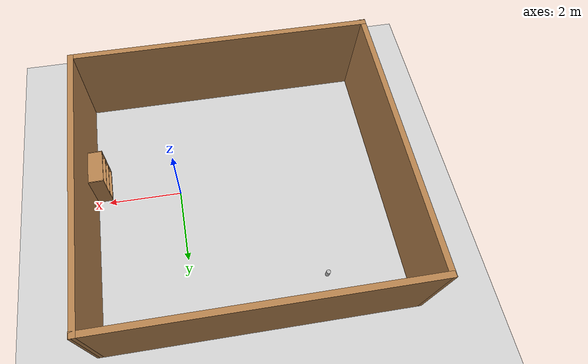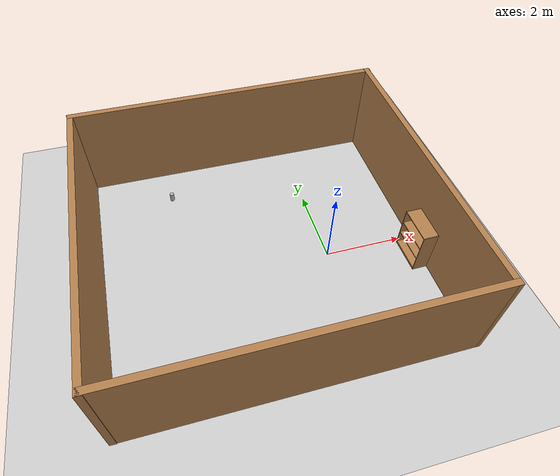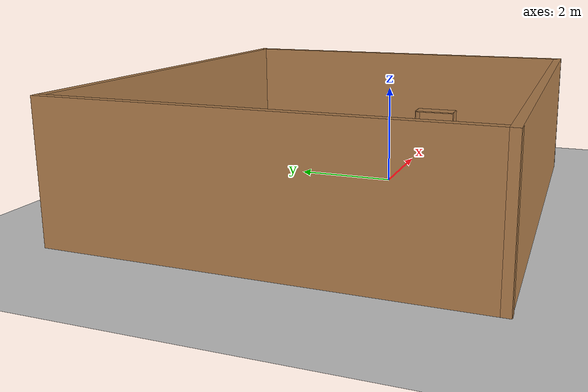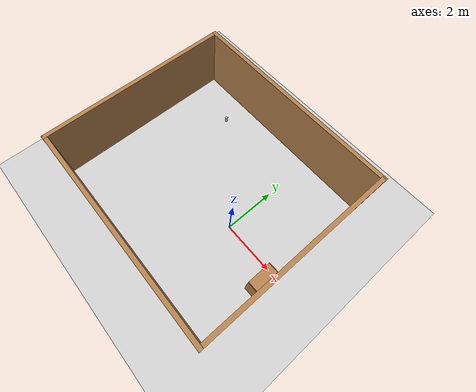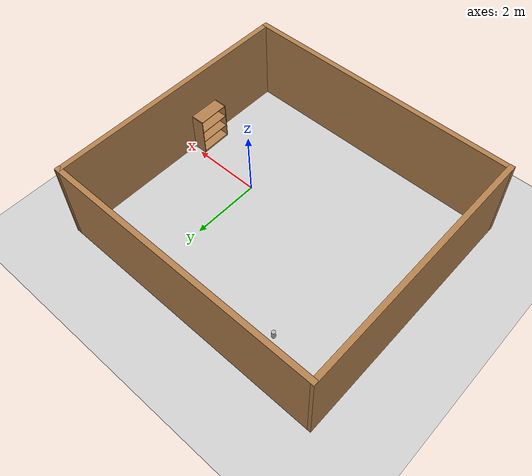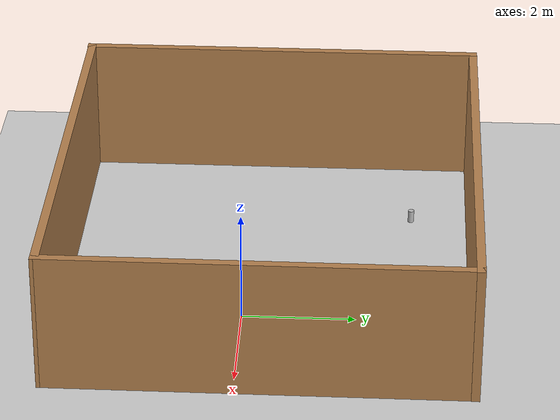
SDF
<sdf version="1.7">
 <world name="default">
  <model name="ground_plane">
   <static>1</static>
   <link name="link">
    <collision name="collision">
     <geometry><plane><normal>0 0 1</normal><size>100 100</size></plane></geometry>
     <surface>
      <contact><collide_bitmask>65535</collide_bitmask></contact>
      <friction><ode><mu>100</mu><mu2>50</mu2></ode></friction>
     </surface>
    </collision>
    <visual name="visual">
     <cast_shadows>0</cast_shadows>
     <geometry><plane><normal>0 0 1</normal><size>100 100</size></plane></geometry>
     <material>
      <script><uri>file://media/materials/scripts/gazebo.material</uri><name>Gazebo/Grey</name></script>
     </material>
    </visual>
   </link>
  </model>
  <light name="sun" type="directional">
   <pose>0 0 10 0 -0 0</pose>
   <diffuse>0.8 0.8 0.8 1</diffuse>
   <specular>0.2 0.2 0.2 1</specular>
   <attenuation>
    <range>1000</range>
    <constant>0.9</constant>
    <linear>0.01</linear>
    <quadratic>0.001</quadratic>
   </attenuation>
   <direction>-0.5 0.1 -0.9</direction>
   <spot><inner_angle>0</inner_angle><outer_angle>0</outer_angle><falloff>0</falloff></spot>
  </light>
  <scene><shadows>0</shadows><ambient>0.4 0.4 0.4 1</ambient><background>0.7 0.7 0.7 1</background></scene>
  <physics type="ode">
   <real_time_update_rate>1000</real_time_update_rate>
   <max_step_size>0.001</max_step_size>
   <real_time_factor>1</real_time_factor>
   <ode>
    <solver>
     <type>quick</type>
     <iters>150</iters>
     <precon_iters>0</precon_iters>
     <sor>1.4</sor>
     <use_dynamic_moi_rescaling>1</use_dynamic_moi_rescaling>
    </solver>
    <constraints>
     <cfm>1e-05</cfm>
     <erp>0.2</erp>
     <contact_max_correcting_vel>2000</contact_max_correcting_vel>
     <contact_surface_layer>0.01</contact_surface_layer>
    </constraints>
   </ode>
  </physics>
  <gravity>0 0 -9.8</gravity>
  <magnetic_field>6e-06 2.3e-05 -4.2e-05</magnetic_field>
  <atmosphere type="adiabatic"/>
  <audio><device>default</device></audio>
  <spherical_coordinates>
   <surface_model>EARTH_WGS84</surface_model>
   <latitude_deg>0</latitude_deg>
   <longitude_deg>0</longitude_deg>
   <elevation>0</elevation>
   <heading_deg>0</heading_deg>
  </spherical_coordinates>
  <model name="beer_1">
   <link name="link">
    <pose>0 0 0.115 0 -0 0</pose>
    <inertial>
     <mass>0.39</mass>
     <inertia><ixx>0.00058</ixx><ixy>0</ixy><ixz>0</ixz><iyy>0.00058</iyy><iyz>0</iyz><izz>0.00019</izz></inertia>
    </inertial>
    <collision name="collision">
     <geometry><cylinder><radius>0.055</radius><length>0.23</length></cylinder></geometry>
    </collision>
    <visual name="visual">
     <geometry><cylinder><radius>0.055</radius><length>0.23</length></cylinder></geometry>
     <material>
      <script>
       <uri>model://beer/materials/scripts</uri>
       <uri>model://beer/materials/textures</uri>
       <name>Beer/Diffuse</name>
      </script>
     </material>
    </visual>
   </link>
   <pose>-3.54997 2.96301 -0 0 -0 0</pose>
  </model>
  <model name="project_world.world">
   <pose>-1.6376 0.41964 0 0 -0 0</pose>
   <link name="Wall_1">
    <collision name="Wall_1_Collision">
     <geometry><box><size>8.17003 0.15 2.5</size></box></geometry>
     <pose>0 0 1.25 0 -0 0</pose>
    </collision>
    <visual name="Wall_1_Visual">
     <pose>0 0 1.25 0 -0 0</pose>
     <geometry><box><size>8.17003 0.15 2.5</size></box></geometry>
     <material>
      <script><uri>file://media/materials/scripts/gazebo.material</uri><name>Gazebo/Wood</name></script>
      <ambient>1 1 1 1</ambient>
     </material>
     <meta><layer>0</layer></meta>
    </visual>
    <pose>-0.019991 -3.63994 0 0 -0 -0.002494</pose>
   </link>
   <link name="Wall_2">
    <collision name="Wall_2_Collision">
     <geometry><box><size>7.43017 0.15 2.5</size></box></geometry>
     <pose>0 0 1.25 0 -0 0</pose>
    </collision>
    <visual name="Wall_2_Visual">
     <pose>0 0 1.25 0 -0 0</pose>
     <geometry><box><size>7.43017 0.15 2.5</size></box></geometry>
     <material>
      <script><uri>file://media/materials/scripts/gazebo.material</uri><name>Gazebo/Wood</name></script>
      <ambient>1 1 1 1</ambient>
     </material>
     <meta><layer>0</layer></meta>
    </visual>
    <pose>4.00501 -0.009942 0 0 -0 1.56668</pose>
   </link>
   <link name="Wall_3">
    <collision name="Wall_3_Collision">
     <geometry><box><size>8.18003 0.15 2.5</size></box></geometry>
     <pose>0 0 1.25 0 -0 0</pose>
    </collision>
    <visual name="Wall_3_Visual">
     <pose>0 0 1.25 0 -0 0</pose>
     <geometry><box><size>8.18003 0.15 2.5</size></box></geometry>
     <material>
      <script><uri>file://media/materials/scripts/gazebo.material</uri><name>Gazebo/Wood</name></script>
      <ambient>1 1 1 1</ambient>
     </material>
     <meta><layer>0</layer></meta>
    </visual>
    <pose>0.015009 3.64006 0 0 -0 3.1391</pose>
   </link>
   <link name="Wall_4">
    <collision name="Wall_4_Collision">
     <geometry><box><size>7.44011 0.15 2.5</size></box></geometry>
     <pose>0 0 1.25 0 -0 0</pose>
    </collision>
    <visual name="Wall_4_Visual">
     <pose>0 0 1.25 0 -0 0</pose>
     <geometry><box><size>7.44011 0.15 2.5</size></box></geometry>
     <material>
      <script><uri>file://media/materials/scripts/gazebo.material</uri><name>Gazebo/Wood</name></script>
      <ambient>1 1 1 1</ambient>
     </material>
     <meta><layer>0</layer></meta>
    </visual>
    <pose>-4.01999 0.005058 0 0 -0 -1.57354</pose>
   </link>
   <static>1</static>
  </model>
  <model name="cupboard_1">
   <static>1</static>
   <link name="link">
    <inertial><mass>1</mass></inertial>
    <collision name="back">
     <pose>0 0.005 0.6 0 -0 0</pose>
     <geometry><box><size>0.9 0.01 1.2</size></box></geometry>
    </collision>
    <visual name="visual1">
     <pose>0 0.005 0.6 0 -0 0</pose>
     <geometry><box><size>0.9 0.01 1.2</size></box></geometry>
     <material>
      <script><uri>file://media/materials/scripts/gazebo.material</uri><name>Gazebo/Wood</name></script>
     </material>
    </visual>
    <collision name="left_side">
     <pose>0.45 -0.195 0.6 0 -0 0</pose>
     <geometry><box><size>0.02 0.4 1.2</size></box></geometry>
    </collision>
    <visual name="visual2">
     <pose>0.45 -0.195 0.6 0 -0 0</pose>
     <geometry><box><size>0.02 0.4 1.2</size></box></geometry>
     <material>
      <script><uri>file://media/materials/scripts/gazebo.material</uri><name>Gazebo/Wood</name></script>
     </material>
    </visual>
    <collision name="right_side">
     <pose>-0.45 -0.195 0.6 0 -0 0</pose>
     <geometry><box><size>0.02 0.4 1.2</size></box></geometry>
    </collision>
    <visual name="visual3">
     <pose>-0.45 -0.195 0.6 0 -0 0</pose>
     <geometry><box><size>0.02 0.4 1.2</size></box></geometry>
     <material>
      <script><uri>file://media/materials/scripts/gazebo.material</uri><name>Gazebo/Wood</name></script>
     </material>
    </visual>
    <collision name="bottom">
     <pose>0 -0.195 0.03 0 -0 0</pose>
     <geometry><box><size>0.88 0.4 0.06</size></box></geometry>
    </collision>
    <visual name="visual4">
     <pose>0 -0.195 0.03 0 -0 0</pose>
     <geometry><box><size>0.88 0.4 0.06</size></box></geometry>
     <material>
      <script><uri>file://media/materials/scripts/gazebo.material</uri><name>Gazebo/Wood</name></script>
     </material>
    </visual>
    <collision name="top">
     <pose>0 -0.195 1.19 0 -0 0</pose>
     <geometry><box><size>0.88 0.4 0.02</size></box></geometry>
    </collision>
    <visual name="visual5">
     <pose>0 -0.195 1.19 0 -0 0</pose>
     <geometry><box><size>0.88 0.4 0.02</size></box></geometry>
     <material>
      <script><uri>file://media/materials/scripts/gazebo.material</uri><name>Gazebo/Wood</name></script>
     </material>
    </visual>
    <collision name="low_shelf">
     <pose>0 -0.195 0.43 0 -0 0</pose>
     <geometry><box><size>0.88 0.4 0.02</size></box></geometry>
    </collision>
    <visual name="visual6">
     <pose>0 -0.195 0.43 0 -0 0</pose>
     <geometry><box><size>0.88 0.4 0.02</size></box></geometry>
     <material>
      <script><uri>file://media/materials/scripts/gazebo.material</uri><name>Gazebo/Wood</name></script>
     </material>
    </visual>
    <collision name="high_shelf">
     <pose>0 -0.195 0.8 0 -0 0</pose>
     <geometry><box><size>0.88 0.4 0.02</size></box></geometry>
    </collision>
    <visual name="visual7">
     <pose>0 -0.195 0.8 0 -0 0</pose>
     <geometry><box><size>0.88 0.4 0.02</size></box></geometry>
     <material>
      <script><uri>file://media/materials/scripts/gazebo.material</uri><name>Gazebo/Wood</name></script>
     </material>
    </visual>
   </link>
   <pose>2.29551 -0.538589 0 0 0 -1.55899</pose>
  </model>
 </world>
</sdf>
